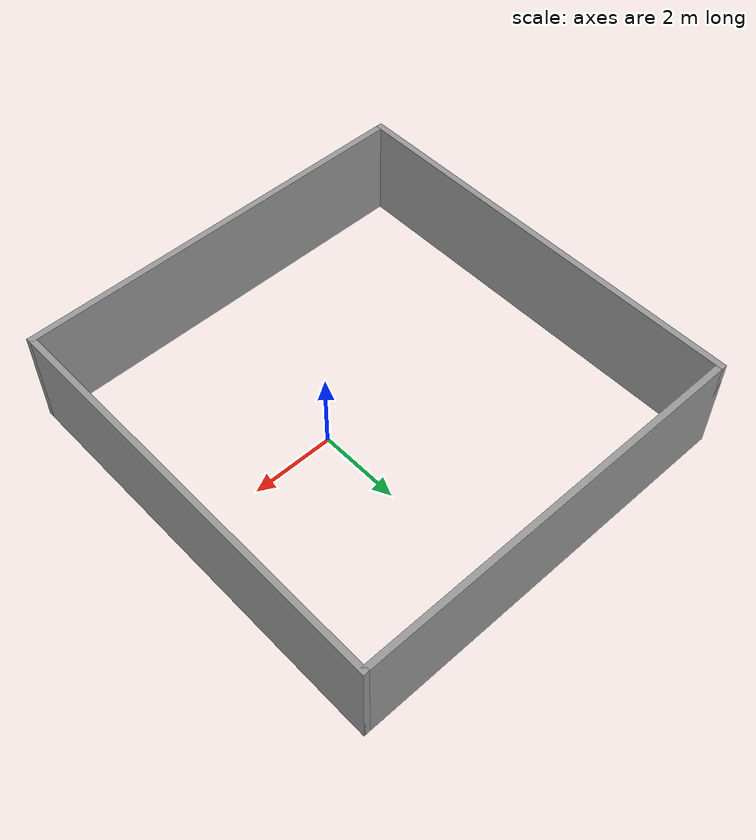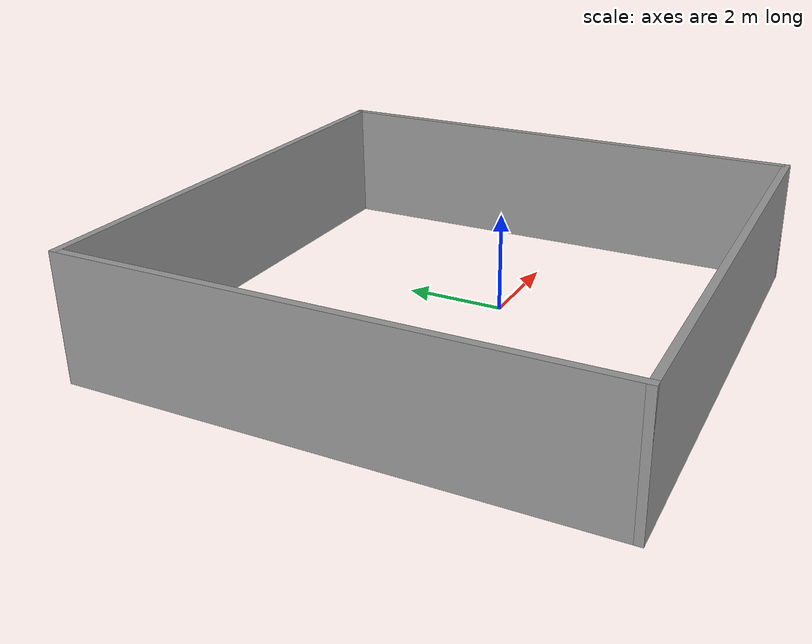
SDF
<?xml version='1.0'?>
<sdf version='1.6'>
  <model name='heights'>
    <pose frame=''>-0.985439 0.402465 0 0 -0 0</pose>
    <link name='Wall_11'>
      <collision name='Wall_11_Collision'>
        <geometry>
          <box>
            <size>10.25 0.15 2.5</size>
          </box>
        </geometry>
        <pose frame=''>0 0 1.25 0 -0 0</pose>
      </collision>
      <visual name='Wall_11_Visual'>
        <pose frame=''>0 0 1.25 0 -0 0</pose>
        <geometry>
          <box>
            <size>10.25 0.15 2.5</size>
          </box>
        </geometry>
        <material>
          <script>
            <uri>file://media/materials/scripts/gazebo.material</uri>
            <name>Gazebo/Grey</name>
          </script>
          <ambient>1 1 1 1</ambient>
        </material>
        <meta>
          <layer>0</layer>
        </meta>
      </visual>
      <pose frame=''>-4.925 0 0 0 -0 1.5708</pose>
    </link>
    <link name='Wall_12'>
      <collision name='Wall_12_Collision'>
        <geometry>
          <box>
            <size>10 0.15 2.5</size>
          </box>
        </geometry>
        <pose frame=''>0 0 1.25 0 -0 0</pose>
      </collision>
      <visual name='Wall_12_Visual'>
        <pose frame=''>0 0 1.25 0 -0 0</pose>
        <geometry>
          <box>
            <size>10 0.15 2.5</size>
          </box>
        </geometry>
        <material>
          <script>
            <uri>file://media/materials/scripts/gazebo.material</uri>
            <name>Gazebo/Grey</name>
          </script>
          <ambient>1 1 1 1</ambient>
        </material>
        <meta>
          <layer>0</layer>
        </meta>
      </visual>
      <pose frame=''>-0 5.05 0 0 -0 0</pose>
    </link>
    <link name='Wall_13'>
      <collision name='Wall_13_Collision'>
        <geometry>
          <box>
            <size>10.25 0.15 2.5</size>
          </box>
        </geometry>
        <pose frame=''>0 0 1.25 0 -0 0</pose>
      </collision>
      <visual name='Wall_13_Visual'>
        <pose frame=''>0 0 1.25 0 -0 0</pose>
        <geometry>
          <box>
            <size>10.25 0.15 2.5</size>
          </box>
        </geometry>
        <material>
          <script>
            <uri>file://media/materials/scripts/gazebo.material</uri>
            <name>Gazebo/Grey</name>
          </script>
          <ambient>1 1 1 1</ambient>
        </material>
        <meta>
          <layer>0</layer>
        </meta>
      </visual>
      <pose frame=''>4.925 0 0 0 -0 -1.5708</pose>
    </link>
    <link name='Wall_6'>
      <collision name='Wall_6_Collision'>
        <geometry>
          <box>
            <size>10 0.15 2.5</size>
          </box>
        </geometry>
        <pose frame=''>0 0 1.25 0 -0 0</pose>
      </collision>
      <visual name='Wall_6_Visual'>
        <pose frame=''>0 0 1.25 0 -0 0</pose>
        <geometry>
          <box>
            <size>10 0.15 2.5</size>
          </box>
        </geometry>
        <material>
          <script>
            <uri>file://media/materials/scripts/gazebo.material</uri>
            <name>Gazebo/Grey</name>
          </script>
          <ambient>1 1 1 1</ambient>
        </material>
        <meta>
          <layer>0</layer>
        </meta>
      </visual>
      <pose frame=''>-0 -5.05 0 0 -0 0</pose>
    </link>
    <static>1</static>
  </model>
</sdf>
